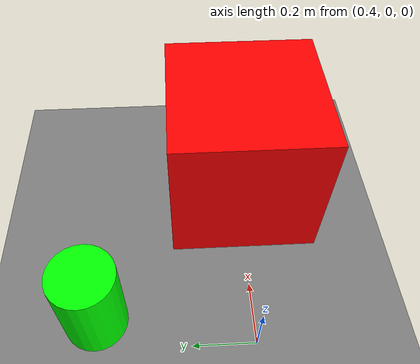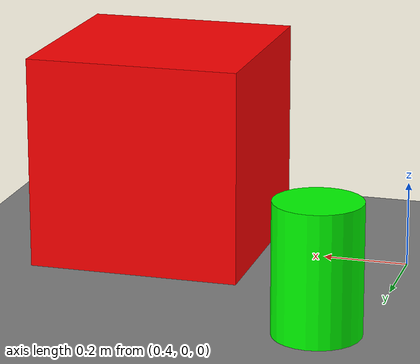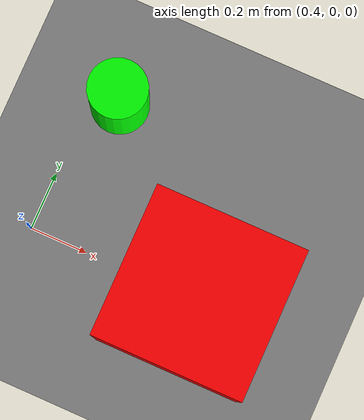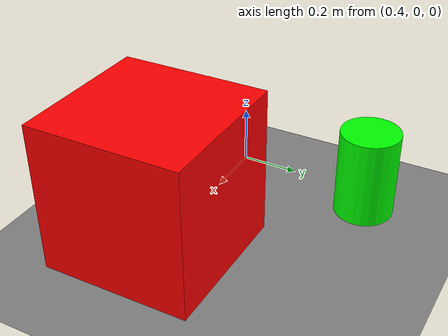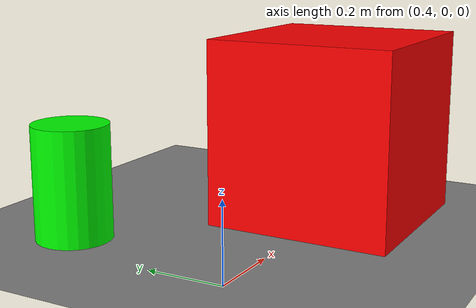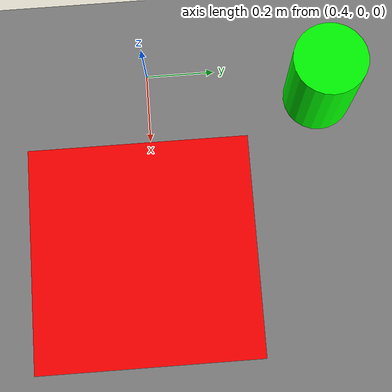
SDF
<?xml version="1.0" ?>
<sdf version="1.8">
  <world name="jetank_simple_test">

    <!-- Physics -->
    <physics name="1ms" type="ignored">
      <max_step_size>0.001</max_step_size>
      <real_time_factor>1.0</real_time_factor>
    </physics>

    <!-- Plugins -->
    <plugin filename="libignition-gazebo-physics-system.so" name="ignition::gazebo::systems::Physics"/>
    <plugin filename="libignition-gazebo-user-commands-system.so" name="ignition::gazebo::systems::UserCommands"/>
    <plugin filename="libignition-gazebo-scene-broadcaster-system.so" name="ignition::gazebo::systems::SceneBroadcaster"/>
    <plugin filename="libignition-gazebo-contact-system.so" name="ignition::gazebo::systems::Contact"/>
    <!-- Rendering sensors (camera, gpu_lidar) require the Sensors system + a render engine. -->
    <plugin filename="libignition-gazebo-sensors-system.so" name="ignition::gazebo::systems::Sensors">
      <render_engine>ogre2</render_engine>
    </plugin>
    <!-- IMU sensors require the Imu system. -->
    <plugin filename="libignition-gazebo-imu-system.so" name="ignition::gazebo::systems::Imu"/>

    <!-- Scene -->
    <scene>
      <ambient>0.4 0.4 0.4 1</ambient>
      <background>0.7 0.7 0.7 1</background>
      <shadows>true</shadows>
      <grid>false</grid>
    </scene>

    <!-- GUI -->
    <gui fullscreen="0">
      <!-- Fortress render stack (GzScene3D is deprecated → blank GUI). -->
      <plugin filename="MinimalScene" name="3D View">
        <ignition-gui>
          <title>3D View</title>
          <property type="bool" key="showTitleBar">false</property>
          <property type="string" key="state">docked</property>
        </ignition-gui>
        <engine>ogre2</engine>
        <scene>scene</scene>
        <ambient_light>0.4 0.4 0.4</ambient_light>
        <background_color>0.8 0.8 0.8</background_color>
        <camera_pose>-2 -2 1.5 0 0.3 0.785</camera_pose>
      </plugin>
      <plugin filename="GzSceneManager" name="Scene Manager"/>
      <plugin filename="InteractiveViewControl" name="Interactive view control"/>
      <plugin filename="CameraTracking" name="Camera Tracking"/>

      <plugin filename="WorldControl" name="World control">
        <ignition-gui>
          <title>World control</title>
          <property type="bool" key="showTitleBar">false</property>
          <property type="bool" key="resizable">false</property>
          <property type="double" key="height">72</property>
          <property type="double" key="width">121</property>
          <property type="double" key="z">1</property>
          <property type="string" key="state">floating</property>
          <anchors target="3D View">
            <line own="left" target="left"/>
            <line own="bottom" target="bottom"/>
          </anchors>
        </ignition-gui>
        <play_pause>true</play_pause>
        <step>true</step>
        <start_paused>true</start_paused>
      </plugin>

      <plugin filename="WorldStats" name="World stats">
        <ignition-gui>
          <title>World stats</title>
          <property type="bool" key="showTitleBar">false</property>
          <property type="bool" key="resizable">false</property>
          <property type="double" key="height">110</property>
          <property type="double" key="width">290</property>
          <property type="double" key="z">1</property>
          <property type="string" key="state">floating</property>
          <anchors target="3D View">
            <line own="right" target="right"/>
            <line own="bottom" target="bottom"/>
          </anchors>
        </ignition-gui>
        <sim_time>true</sim_time>
        <real_time>true</real_time>
        <real_time_factor>true</real_time_factor>
        <iterations>true</iterations>
      </plugin>
    </gui>

    <!-- Lighting -->
    <light type="directional" name="sun">
      <cast_shadows>true</cast_shadows>
      <pose>0 0 10 0 0 0</pose>
      <diffuse>0.8 0.8 0.8 1</diffuse>
      <specular>0.2 0.2 0.2 1</specular>
      <attenuation>
        <range>1000</range>
        <constant>0.9</constant>
        <linear>0.01</linear>
        <quadratic>0.001</quadratic>
      </attenuation>
      <direction>-0.5 0.1 -0.9</direction>
    </light>

    <!-- Ground plane -->
    <model name="ground_plane">
      <static>true</static>
      <link name="link">
        <collision name="collision">
          <geometry>
            <plane>
              <normal>0 0 1</normal>
              <size>10 10</size>
            </plane>
          </geometry>
        </collision>
        <visual name="visual">
          <geometry>
            <plane>
              <normal>0 0 1</normal>
              <size>10 10</size>
            </plane>
          </geometry>
          <material>
            <ambient>0.5 0.5 0.5 1</ambient>
            <diffuse>0.5 0.5 0.5 1</diffuse>
            <specular>0.1 0.1 0.1 1</specular>
          </material>
        </visual>
      </link>
    </model>

    <!-- Simple box obstacle for stereo depth testing -->
    <model name="test_box">
      <static>true</static>
      <pose>1.0 0 0.25 0 0 0</pose>
      <link name="link">
        <collision name="collision">
          <geometry>
            <box>
              <size>0.5 0.5 0.5</size>
            </box>
          </geometry>
        </collision>
        <visual name="visual">
          <geometry>
            <box>
              <size>0.5 0.5 0.5</size>
            </box>
          </geometry>
          <material>
            <ambient>1 0 0 1</ambient>
            <diffuse>1 0 0 1</diffuse>
            <specular>0.5 0.5 0.5 1</specular>
          </material>
        </visual>
      </link>
    </model>

    <!-- Cylinder at varying distance -->
    <model name="test_cylinder">
      <static>true</static>
      <pose>0.5 0.5 0.15 0 0 0</pose>
      <link name="link">
        <collision name="collision">
          <geometry>
            <cylinder>
              <radius>0.1</radius>
              <length>0.3</length>
            </cylinder>
          </geometry>
        </collision>
        <visual name="visual">
          <geometry>
            <cylinder>
              <radius>0.1</radius>
              <length>0.3</length>
            </cylinder>
          </geometry>
          <material>
            <ambient>0 1 0 1</ambient>
            <diffuse>0 1 0 1</diffuse>
            <specular>0.5 0.5 0.5 1</specular>
          </material>
        </visual>
      </link>
    </model>

  </world>
</sdf>
